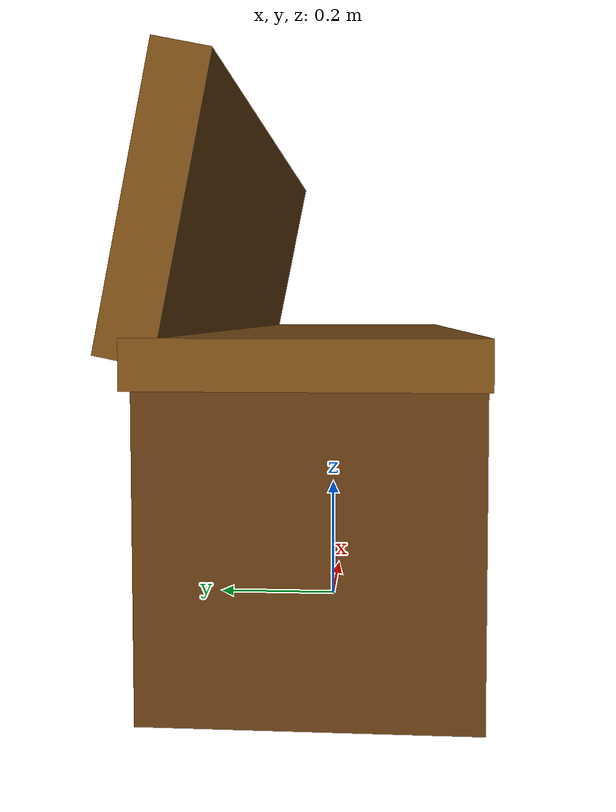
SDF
<?xml version="1.0" ?>
<!-- Park bench: 1.2m wooden seat with backrest. Origin at ground level, seat faces -Y -->
<sdf version="1.6">
  <model name="bench">
    <static>true</static>
    <link name="link">

      <!-- Collision (full envelope) -->
      <collision name="col">
        <pose>0 0 0.35 0 0 0</pose>
        <geometry><box><size>1.2 0.5 0.7</size></box></geometry>
      </collision>

      <!-- Seat surface -->
      <visual name="seat">
        <pose>0 0 0.44 0 0 0</pose>
        <geometry><box><size>1.2 0.42 0.06</size></box></geometry>
        <material>
          <ambient>0.48 0.30 0.08 1</ambient>
          <diffuse>0.48 0.30 0.08 1</diffuse>
          <specular>0.1 0.1 0.1 1</specular>
        </material>
      </visual>

      <!-- Backrest (slightly angled back) -->
      <visual name="backrest">
        <pose>0 0.17 0.62 0.20 0 0</pose>
        <geometry><box><size>1.2 0.07 0.36</size></box></geometry>
        <material>
          <ambient>0.48 0.30 0.08 1</ambient>
          <diffuse>0.48 0.30 0.08 1</diffuse>
        </material>
      </visual>

      <!-- Left leg -->
      <visual name="leg_left">
        <pose>-0.52 0 0.22 0 0 0</pose>
        <geometry><box><size>0.06 0.42 0.44</size></box></geometry>
        <material>
          <ambient>0.38 0.22 0.06 1</ambient>
          <diffuse>0.38 0.22 0.06 1</diffuse>
        </material>
      </visual>

      <!-- Right leg -->
      <visual name="leg_right">
        <pose>0.52 0 0.22 0 0 0</pose>
        <geometry><box><size>0.06 0.42 0.44</size></box></geometry>
        <material>
          <ambient>0.38 0.22 0.06 1</ambient>
          <diffuse>0.38 0.22 0.06 1</diffuse>
        </material>
      </visual>

    </link>
  </model>
</sdf>
